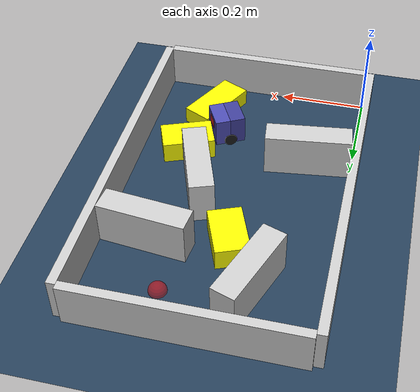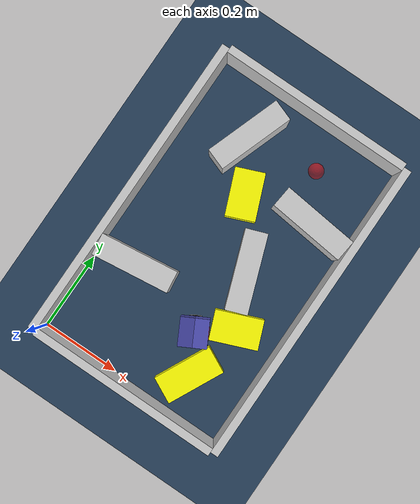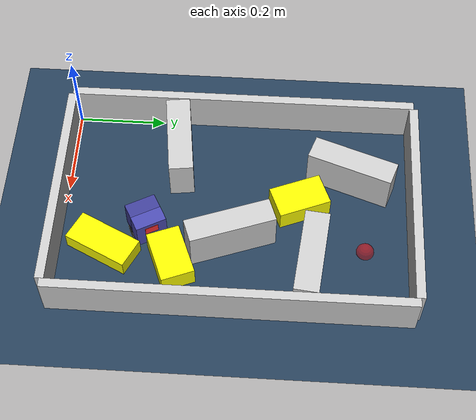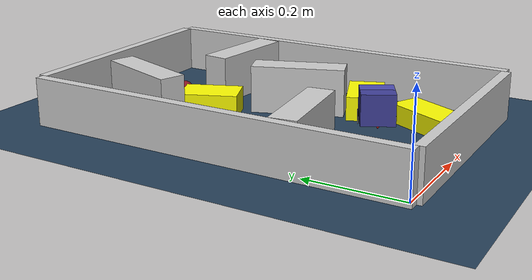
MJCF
<?xml version='1.0' encoding='utf-8'?>
<mujoco model="real_buildable">
  <compiler angle="degree" />
  <option timestep="0.002" integrator="implicitfast" iterations="100" cone="elliptic" />
  <default>
    <geom density="1" />
  </default>
  <asset>
    <texture builtin="gradient" height="3072" rgb1="0.3 0.5 0.7" rgb2="0 0 0" type="skybox" width="512" />
    <texture builtin="checker" height="300" mark="edge" markrgb="0.8 0.8 0.8" name="groundplane" rgb1="0.2 0.3 0.4" rgb2="0.1 0.2 0.3" type="2d" width="300" />
    <material name="groundplane" reflectance="0.2" texrepeat="5 5" texture="groundplane" texuniform="true" />
  </asset>
  <worldbody>
    <light dir="0 0 -1" directional="true" pos="0 0 1.5" />
    <geom name="floor" type="plane" condim="4" friction="0.5 0.005 0.001" material="groundplane" size="0 0 0.05" />
    <body name="walls">
      <geom name="wall_boundary_left" type="box" condim="4" friction="1.0 0.005 0.0001" rgba="0.8 0.8 0.8 1" pos="-0.010000 0.387500 0.050000" euler="0 0 0.000000" size="0.010000 0.397500 0.050000" />
      <geom name="wall_boundary_right" type="box" condim="4" friction="1.0 0.005 0.0001" rgba="0.8 0.8 0.8 1" pos="0.500000 0.387500 0.050000" euler="0 0 0.000000" size="0.010000 0.397500 0.050000" />
      <geom name="wall_boundary_bottom" type="box" condim="4" friction="1.0 0.005 0.0001" rgba="0.8 0.8 0.8 1" pos="0.245000 -0.010000 0.050000" euler="0 0 0.000000" size="0.245000 0.010000 0.050000" />
      <geom name="wall_boundary_top" type="box" condim="4" friction="1.0 0.005 0.0001" rgba="0.8 0.8 0.8 1" pos="0.245000 0.785000 0.050000" euler="0 0 0.000000" size="0.245000 0.010000 0.050000" />
      <geom name="wall_inner_1" type="box" condim="4" friction="1.0 0.005 0.0001" rgba="0.8 0.8 0.8 1" pos="0.100147 0.249346 0.050000" euler="0 0 187.081968" size="0.097500 0.027500 0.050000" />
      <geom name="wall_inner_2" type="box" condim="4" friction="1.0 0.005 0.0001" rgba="0.8 0.8 0.8 1" pos="0.324776 0.378864 0.050000" euler="0 0 109.883048" size="0.097500 0.027500 0.050000" />
      <geom name="wall_inner_3" type="box" condim="4" friction="1.0 0.005 0.0001" rgba="0.8 0.8 0.8 1" pos="0.390000 0.558000 0.050000" euler="0 0 173.700000" size="0.097500 0.027500 0.050000" />
      <geom name="wall_inner_4" type="box" condim="4" friction="1.0 0.005 0.0001" rgba="0.8 0.8 0.8 1" pos="0.151000 0.645000 0.050000" euler="0 0 70.500000" size="0.097500 0.027500 0.050000" />
    </body>
    <body name="car" pos="0.30398686992451973 0.19164434460120636 0.01" quat="0.97013431507458725 0 0 0.24256836297168174">
      <freejoint name="car_freejoint" />
      <inertial pos="0 0 0.0375" mass="0.35" diaginertia="0.000266 0.000266 0.000286" />
      <geom name="front_chassis_collision" type="box" pos="0.0175 0 0.0375" size="0.0175 0.035 0.0325" rgba="0.3 0.3 0.7 1" />
      <geom name="rear_chassis_collision" type="box" pos="-0.0175 0 0.0375" size="0.0175 0.035 0.0325" rgba="0.25 0.25 0.6 1" />
      <geom name="front_marker" type="box" pos="0.034 0 0.0505" size="0.002 0.015 0.01" rgba="1 0.2 0.2 1" contype="0" conaffinity="0" />
      <body name="rear_support_body" pos="-0.03 0 0.0025">
        <joint name="rear_caster_joint" type="ball" damping="0.0001" />
        <inertial pos="0 0 0" mass="0.025" diaginertia="0.000001 0.000001 0.000001" />
        <geom name="rear_support" type="sphere" pos="0 0 0" size="0.0025" friction="0 0 0" rgba="0.7 0.1 0.1 1" />
      </body>
      <body name="front_support_body" pos="0.03 0 0.0025">
        <joint name="front_caster_joint" type="ball" damping="0.0001" />
        <inertial pos="0 0 0" mass="0.025" diaginertia="0.000001 0.000001 0.000001" />
        <geom name="front_support" type="sphere" pos="0 0 0" size="0.0025" friction="0 0 0" rgba="0.1 0.7 0.1 1" />
      </body>
      <body name="left_wheel" pos="0 0.0375 0.015">
        <inertial pos="0 0 0" mass="0.05" diaginertia="0.000003 0.000006 0.000003" />
        <joint name="left_wheel_joint" type="hinge" axis="0 1 0" damping="0.01" armature="0.0001" />
        <geom name="left_wheel_collision" type="cylinder" size="0.015 0.0005" euler="90 0 0" rgba="0.1 0.1 0.1 1" />
      </body>
      <body name="right_wheel" pos="0 -0.0375 0.015">
        <inertial pos="0 0 0" mass="0.05" diaginertia="0.000003 0.000006 0.000003" />
        <joint name="right_wheel_joint" type="hinge" axis="0 1 0" damping="0.01" armature="0.0001" />
        <geom name="right_wheel_collision" type="cylinder" size="0.015 0.0005" euler="90 0 0" rgba="0.1 0.1 0.1 1" />
      </body>
    </body>
    <body name="obstacle_0_movable">
      <geom name="obstacle_0_movable" condim="4" pos="0.38486535683870948 0.25200602227612423 0.025000000000000001" friction="1 0.005 0.0001" rgba="1 1 0 1" size="0.037500 0.060000 0.025000" type="box" mass="0.1" quat="0.56119792726330353 0 0 0.82768163350129487" />
      <joint type="free" />
    </body>
    <body name="obstacle_1_movable">
      <geom name="obstacle_1_movable" condim="4" pos="0.21999999999999967 0.52999999999999958 0.025000000000000001" friction="1 0.005 0.0001" rgba="1 1 0 1" size="0.037500 0.060000 0.025000" type="box" mass="0.1" quat="0.98162718344766398 0 0 0.1908089953765448" />
      <joint type="free" />
    </body>
    <body name="obstacle_2_movable">
      <geom name="obstacle_2_movable" condim="4" pos="0.35261999999999932 0.098967000000000208 0.02" friction="1 0.005 0.0001" rgba="1 1 0 1" size="0.035000 0.075000 0.020000" type="box" mass="0.1" quat="0.227540630565502 0 0 0.97376858721251314" />
      <joint type="free" />
    </body>
    <site name="goal" type="sphere" pos="0.330000 0.680000 0.0" size="0.02" rgba="1 0 0 0.5" />
  </worldbody>
  <actuator>
    <velocity name="left_wheel_drive" joint="left_wheel_joint" ctrlrange="-25 25" kv="0.75" forcerange="-0.5 0.5" />
    <velocity name="right_wheel_drive" joint="right_wheel_joint" ctrlrange="-25 25" kv="0.75" forcerange="-0.5 0.5" />
  </actuator>
</mujoco>
